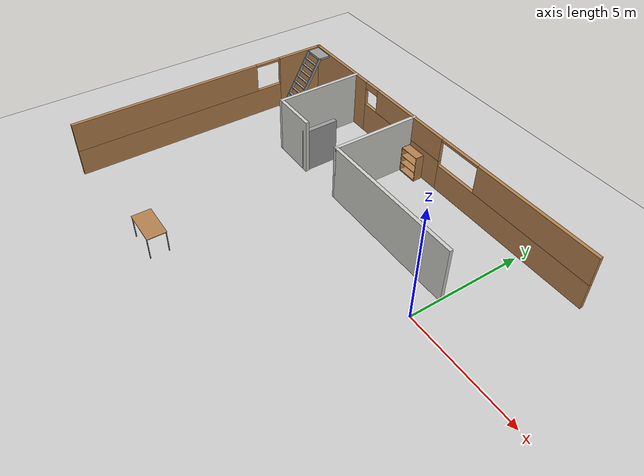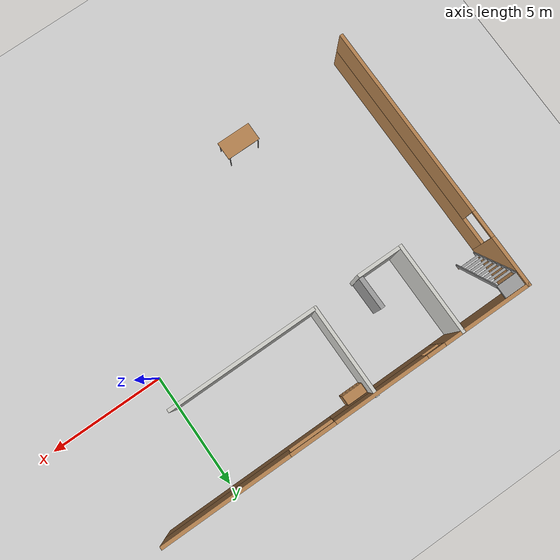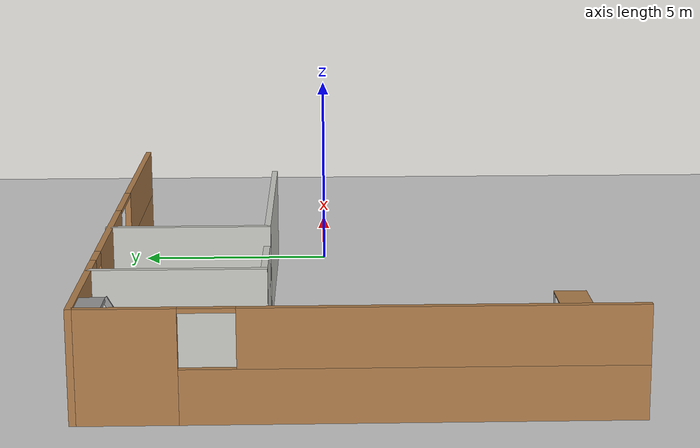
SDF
<sdf version="1.6">
 <world name="default">
  <model name="ground_plane">
   <static>1</static>
   <link name="link">
    <collision name="collision">
     <geometry><plane><normal>0 0 1</normal><size>100 100</size></plane></geometry>
     <surface>
      <contact><collide_bitmask>65535</collide_bitmask></contact>
      <friction><ode><mu>100</mu><mu2>50</mu2></ode></friction>
     </surface>
    </collision>
    <visual name="visual">
     <cast_shadows>0</cast_shadows>
     <geometry><plane><normal>0 0 1</normal><size>100 100</size></plane></geometry>
     <material>
      <script><uri>file://media/materials/scripts/gazebo.material</uri><name>Gazebo/Grey</name></script>
     </material>
    </visual>
   </link>
  </model>
  <model name="bookshelf">
   <static>1</static>
   <link name="link">
    <inertial><mass>1</mass></inertial>
    <collision name="back">
     <pose>0 0.005 0.6 0 -0 0</pose>
     <geometry><box><size>0.9 0.01 1.2</size></box></geometry>
    </collision>
    <visual name="visual1">
     <pose>0 0.005 0.6 0 -0 0</pose>
     <geometry><box><size>0.9 0.01 1.2</size></box></geometry>
     <material>
      <script><uri>file://media/materials/scripts/gazebo.material</uri><name>Gazebo/Wood</name></script>
     </material>
    </visual>
    <collision name="left_side">
     <pose>0.45 -0.195 0.6 0 -0 0</pose>
     <geometry><box><size>0.02 0.4 1.2</size></box></geometry>
    </collision>
    <visual name="visual2">
     <pose>0.45 -0.195 0.6 0 -0 0</pose>
     <geometry><box><size>0.02 0.4 1.2</size></box></geometry>
     <material>
      <script><uri>file://media/materials/scripts/gazebo.material</uri><name>Gazebo/Wood</name></script>
     </material>
    </visual>
    <collision name="right_side">
     <pose>-0.45 -0.195 0.6 0 -0 0</pose>
     <geometry><box><size>0.02 0.4 1.2</size></box></geometry>
    </collision>
    <visual name="visual3">
     <pose>-0.45 -0.195 0.6 0 -0 0</pose>
     <geometry><box><size>0.02 0.4 1.2</size></box></geometry>
     <material>
      <script><uri>file://media/materials/scripts/gazebo.material</uri><name>Gazebo/Wood</name></script>
     </material>
    </visual>
    <collision name="bottom">
     <pose>0 -0.195 0.03 0 -0 0</pose>
     <geometry><box><size>0.88 0.4 0.06</size></box></geometry>
    </collision>
    <visual name="visual4">
     <pose>0 -0.195 0.03 0 -0 0</pose>
     <geometry><box><size>0.88 0.4 0.06</size></box></geometry>
     <material>
      <script><uri>file://media/materials/scripts/gazebo.material</uri><name>Gazebo/Wood</name></script>
     </material>
    </visual>
    <collision name="top">
     <pose>0 -0.195 1.19 0 -0 0</pose>
     <geometry><box><size>0.88 0.4 0.02</size></box></geometry>
    </collision>
    <visual name="visual5">
     <pose>0 -0.195 1.19 0 -0 0</pose>
     <geometry><box><size>0.88 0.4 0.02</size></box></geometry>
     <material>
      <script><uri>file://media/materials/scripts/gazebo.material</uri><name>Gazebo/Wood</name></script>
     </material>
    </visual>
    <collision name="low_shelf">
     <pose>0 -0.195 0.43 0 -0 0</pose>
     <geometry><box><size>0.88 0.4 0.02</size></box></geometry>
    </collision>
    <visual name="visual6">
     <pose>0 -0.195 0.43 0 -0 0</pose>
     <geometry><box><size>0.88 0.4 0.02</size></box></geometry>
     <material>
      <script><uri>file://media/materials/scripts/gazebo.material</uri><name>Gazebo/Wood</name></script>
     </material>
    </visual>
    <collision name="high_shelf">
     <pose>0 -0.195 0.8 0 -0 0</pose>
     <geometry><box><size>0.88 0.4 0.02</size></box></geometry>
    </collision>
    <visual name="visual7">
     <pose>0 -0.195 0.8 0 -0 0</pose>
     <geometry><box><size>0.88 0.4 0.02</size></box></geometry>
     <material>
      <script><uri>file://media/materials/scripts/gazebo.material</uri><name>Gazebo/Wood</name></script>
     </material>
    </visual>
   </link>
   <pose>-5.94941 5.06347 0 0 -0 0</pose>
  </model>
  <model name="ladder_60deg_0rails">
   <static>1</static>
   <link name="step0">
    <pose>0 0.15396 0.266667 0 -0 0</pose>
    <inertial>
     <mass>9.75482</mass>
     <inertia>
      <ixx>0.00957124</ixx>
      <iyy>0.65963</iyy>
      <izz>0.666842</izz>
      <ixy>0</ixy>
      <ixz>0</ixz>
      <iyz>0</iyz>
     </inertia>
    </inertial>
    <collision name="collision"><geometry><box><size>0.9 0.1016 0.0381</size></box></geometry></collision>
    <visual name="visual">
     <geometry><box><size>0.9 0.1016 0.0381</size></box></geometry>
     <material>
      <script><uri>file://media/materials/scripts/gazebo.material</uri><name>Gazebo/Grey</name></script>
     </material>
    </visual>
   </link>
   <link name="step1">
    <pose>0 0.30792 0.533333 0 -0 0</pose>
    <inertial>
     <mass>9.75482</mass>
     <inertia>
      <ixx>0.00957124</ixx>
      <iyy>0.65963</iyy>
      <izz>0.666842</izz>
      <ixy>0</ixy>
      <ixz>0</ixz>
      <iyz>0</iyz>
     </inertia>
    </inertial>
    <collision name="collision"><geometry><box><size>0.9 0.1016 0.0381</size></box></geometry></collision>
    <visual name="visual">
     <geometry><box><size>0.9 0.1016 0.0381</size></box></geometry>
     <material>
      <script><uri>file://media/materials/scripts/gazebo.material</uri><name>Gazebo/Grey</name></script>
     </material>
    </visual>
   </link>
   <link name="step2">
    <pose>0 0.46188 0.8 0 -0 0</pose>
    <inertial>
     <mass>9.75482</mass>
     <inertia>
      <ixx>0.00957124</ixx>
      <iyy>0.65963</iyy>
      <izz>0.666842</izz>
      <ixy>0</ixy>
      <ixz>0</ixz>
      <iyz>0</iyz>
     </inertia>
    </inertial>
    <collision name="collision"><geometry><box><size>0.9 0.1016 0.0381</size></box></geometry></collision>
    <visual name="visual">
     <geometry><box><size>0.9 0.1016 0.0381</size></box></geometry>
     <material>
      <script><uri>file://media/materials/scripts/gazebo.material</uri><name>Gazebo/Grey</name></script>
     </material>
    </visual>
   </link>
   <link name="step3">
    <pose>0 0.61584 1.06667 0 -0 0</pose>
    <inertial>
     <mass>9.75482</mass>
     <inertia>
      <ixx>0.00957124</ixx>
      <iyy>0.65963</iyy>
      <izz>0.666842</izz>
      <ixy>0</ixy>
      <ixz>0</ixz>
      <iyz>0</iyz>
     </inertia>
    </inertial>
    <collision name="collision"><geometry><box><size>0.9 0.1016 0.0381</size></box></geometry></collision>
    <visual name="visual">
     <geometry><box><size>0.9 0.1016 0.0381</size></box></geometry>
     <material>
      <script><uri>file://media/materials/scripts/gazebo.material</uri><name>Gazebo/Grey</name></script>
     </material>
    </visual>
   </link>
   <link name="step4">
    <pose>0 0.7698 1.33333 0 -0 0</pose>
    <inertial>
     <mass>9.75482</mass>
     <inertia>
      <ixx>0.00957124</ixx>
      <iyy>0.65963</iyy>
      <izz>0.666842</izz>
      <ixy>0</ixy>
      <ixz>0</ixz>
      <iyz>0</iyz>
     </inertia>
    </inertial>
    <collision name="collision"><geometry><box><size>0.9 0.1016 0.0381</size></box></geometry></collision>
    <visual name="visual">
     <geometry><box><size>0.9 0.1016 0.0381</size></box></geometry>
     <material>
      <script><uri>file://media/materials/scripts/gazebo.material</uri><name>Gazebo/Grey</name></script>
     </material>
    </visual>
   </link>
   <link name="step5">
    <pose>0 0.92376 1.6 0 -0 0</pose>
    <inertial>
     <mass>9.75482</mass>
     <inertia>
      <ixx>0.00957124</ixx>
      <iyy>0.65963</iyy>
      <izz>0.666842</izz>
      <ixy>0</ixy>
      <ixz>0</ixz>
      <iyz>0</iyz>
     </inertia>
    </inertial>
    <collision name="collision"><geometry><box><size>0.9 0.1016 0.0381</size></box></geometry></collision>
    <visual name="visual">
     <geometry><box><size>0.9 0.1016 0.0381</size></box></geometry>
     <material>
      <script><uri>file://media/materials/scripts/gazebo.material</uri><name>Gazebo/Grey</name></script>
     </material>
    </visual>
   </link>
   <link name="step6">
    <pose>0 1.07772 1.86667 0 -0 0</pose>
    <inertial>
     <mass>9.75482</mass>
     <inertia>
      <ixx>0.00957124</ixx>
      <iyy>0.65963</iyy>
      <izz>0.666842</izz>
      <ixy>0</ixy>
      <ixz>0</ixz>
      <iyz>0</iyz>
     </inertia>
    </inertial>
    <collision name="collision"><geometry><box><size>0.9 0.1016 0.0381</size></box></geometry></collision>
    <visual name="visual">
     <geometry><box><size>0.9 0.1016 0.0381</size></box></geometry>
     <material>
      <script><uri>file://media/materials/scripts/gazebo.material</uri><name>Gazebo/Grey</name></script>
     </material>
    </visual>
   </link>
   <link name="step7">
    <pose>0 1.23168 2.13333 0 -0 0</pose>
    <inertial>
     <mass>9.75482</mass>
     <inertia>
      <ixx>0.00957124</ixx>
      <iyy>0.65963</iyy>
      <izz>0.666842</izz>
      <ixy>0</ixy>
      <ixz>0</ixz>
      <iyz>0</iyz>
     </inertia>
    </inertial>
    <collision name="collision"><geometry><box><size>0.9 0.1016 0.0381</size></box></geometry></collision>
    <visual name="visual">
     <geometry><box><size>0.9 0.1016 0.0381</size></box></geometry>
     <material>
      <script><uri>file://media/materials/scripts/gazebo.material</uri><name>Gazebo/Grey</name></script>
     </material>
    </visual>
   </link>
   <link name="landing">
    <pose>0 1.68564 2.4 0 -0 0</pose>
    <inertial>
     <mass>57.6072</mass>
     <inertia><ixx>1.73518</ixx><iyy>3.89545</iyy><izz>5.6167</izz><ixy>0</ixy><ixz>0</ixz><iyz>0</iyz></inertia>
    </inertial>
    <collision name="collision"><geometry><box><size>0.9 0.6 0.1016</size></box></geometry></collision>
    <visual name="visual">
     <geometry><box><size>0.9 0.6 0.1016</size></box></geometry>
     <material>
      <script><uri>file://media/materials/scripts/gazebo.material</uri><name>Gazebo/Grey</name></script>
     </material>
    </visual>
   </link>
   <link name="left_side_wall">
    <pose>-0.45 0.69282 1.2 1.0472 -0 0</pose>
    <collision name="collision"><geometry><box><size>0.0508 2.85128 0.13</size></box></geometry></collision>
    <visual name="visual">
     <geometry><box><size>0.0508 2.85128 0.13</size></box></geometry>
     <material>
      <script><uri>file://media/materials/scripts/gazebo.material</uri><name>Gazebo/Grey</name></script>
     </material>
    </visual>
   </link>
   <link name="right_side_wall">
    <pose>0.45 0.69282 1.2 1.0472 -0 0</pose>
    <collision name="collision"><geometry><box><size>0.0508 2.85128 0.13</size></box></geometry></collision>
    <visual name="visual">
     <geometry><box><size>0.0508 2.85128 0.13</size></box></geometry>
     <material>
      <script><uri>file://media/materials/scripts/gazebo.material</uri><name>Gazebo/Grey</name></script>
     </material>
    </visual>
   </link>
   <pose>-12.9394 3.18019 0 0 -0 0</pose>
  </model>
  <model name="wooden_peg">
   <link name="link">
    <pose>0 0 0.04 0 -0 0</pose>
    <inertial>
     <mass>0.0175</mass>
     <inertia>
      <ixx>9.74923e-06</ixx>
      <ixy>0</ixy>
      <ixz>0</ixz>
      <iyy>9.74923e-06</iyy>
      <iyz>0</iyz>
      <izz>8.31797e-07</izz>
     </inertia>
    </inertial>
    <collision name="collision">
     <geometry><cylinder><radius>0.00975</radius><length>0.08</length></cylinder></geometry>
     <surface>
      <contact>
       <poissons_ratio>0.347</poissons_ratio>
       <elastic_modulus>8.8e+09</elastic_modulus>
       <ode><kp>100000</kp><kd>100</kd><max_vel>100</max_vel><min_depth>0.001</min_depth></ode>
      </contact>
      <friction>
       <torsional>
        <coefficient>1</coefficient>
        <use_patch_radius>0</use_patch_radius>
        <surface_radius>0.01</surface_radius>
       </torsional>
      </friction>
     </surface>
    </collision>
    <visual name="visual">
     <geometry><cylinder><radius>0.00975</radius><length>0.08</length></cylinder></geometry>
     <material>
      <script><uri>file://media/materials/scripts/gazebo.material</uri><name>Gazebo/Wood</name></script>
     </material>
    </visual>
   </link>
   <pose>-12.4611 3.34456 0.008749 1.5708 0.065584 -0.003718</pose>
  </model>
  <model name="table_0">
   <static>1</static>
   <link name="link">
    <collision name="surface">
     <pose>0 0 1 0 -0 0</pose>
     <geometry><box><size>1.5 0.8 0.03</size></box></geometry>
     <surface><friction><ode><mu>0.6</mu><mu2>0.6</mu2></ode></friction></surface>
    </collision>
    <visual name="visual1">
     <pose>0 0 1 0 -0 0</pose>
     <geometry><box><size>1.5 0.8 0.03</size></box></geometry>
     <material>
      <script><uri>file://media/materials/scripts/gazebo.material</uri><name>Gazebo/Wood</name></script>
     </material>
    </visual>
    <collision name="front_left_leg">
     <pose>0.68 0.38 0.5 0 -0 0</pose>
     <geometry><cylinder><radius>0.02</radius><length>1</length></cylinder></geometry>
    </collision>
    <visual name="front_left_leg">
     <pose>0.68 0.38 0.5 0 -0 0</pose>
     <geometry><cylinder><radius>0.02</radius><length>1</length></cylinder></geometry>
     <material>
      <script><uri>file://media/materials/scripts/gazebo.material</uri><name>Gazebo/Grey</name></script>
     </material>
    </visual>
    <collision name="front_right_leg">
     <pose>0.68 -0.38 0.5 0 -0 0</pose>
     <geometry><cylinder><radius>0.02</radius><length>1</length></cylinder></geometry>
    </collision>
    <visual name="front_right_leg">
     <pose>0.68 -0.38 0.5 0 -0 0</pose>
     <geometry><cylinder><radius>0.02</radius><length>1</length></cylinder></geometry>
     <material>
      <script><uri>file://media/materials/scripts/gazebo.material</uri><name>Gazebo/Grey</name></script>
     </material>
    </visual>
    <collision name="back_right_leg">
     <pose>-0.68 -0.38 0.5 0 -0 0</pose>
     <geometry><cylinder><radius>0.02</radius><length>1</length></cylinder></geometry>
    </collision>
    <visual name="back_right_leg">
     <pose>-0.68 -0.38 0.5 0 -0 0</pose>
     <geometry><cylinder><radius>0.02</radius><length>1</length></cylinder></geometry>
     <material>
      <script><uri>file://media/materials/scripts/gazebo.material</uri><name>Gazebo/Grey</name></script>
     </material>
    </visual>
    <collision name="back_left_leg">
     <pose>-0.68 0.38 0.5 0 -0 0</pose>
     <geometry><cylinder><radius>0.02</radius><length>1</length></cylinder></geometry>
    </collision>
    <visual name="back_left_leg">
     <pose>-0.68 0.38 0.5 0 -0 0</pose>
     <geometry><cylinder><radius>0.02</radius><length>1</length></cylinder></geometry>
     <material>
      <script><uri>file://media/materials/scripts/gazebo.material</uri><name>Gazebo/Grey</name></script>
     </material>
    </visual>
   </link>
   <pose>-8.01928 -5.95607 0 0 -0 0</pose>
  </model>
  <model name="ball_bearing">
   <link name="link">
    <pose>0 0 0.003 0 -0 0</pose>
    <inertial>
     <mass>0.0011</mass>
     <inertia>
      <ixx>3.96e-09</ixx>
      <ixy>0</ixy>
      <ixz>0</ixz>
      <iyy>3.96e-09</iyy>
      <iyz>0</iyz>
      <izz>3.96e-09</izz>
     </inertia>
    </inertial>
    <collision name="collision">
     <geometry><sphere><radius>0.003</radius></sphere></geometry>
     <surface>
      <contact>
       <poissons_ratio>0.305</poissons_ratio>
       <elastic_modulus>2e+11</elastic_modulus>
       <ode><kp>100000</kp><kd>100</kd><max_vel>100</max_vel><min_depth>0.001</min_depth></ode>
      </contact>
      <friction>
       <torsional>
        <coefficient>1</coefficient>
        <use_patch_radius>0</use_patch_radius>
        <surface_radius>0.01</surface_radius>
       </torsional>
      </friction>
     </surface>
    </collision>
    <visual name="visual">
     <geometry><sphere><radius>0.003</radius></sphere></geometry>
     <material>
      <script><uri>file://media/materials/scripts/gazebo.material</uri><name>Gazebo/Grey</name></script>
     </material>
    </visual>
    <velocity_decay><linear>0</linear><angular>0.005</angular></velocity_decay>
   </link>
   <pose>-4.0826 -9.05693 -0.000558 0 -0 0</pose>
  </model>
  <model name="MyHouse">
   <link name="Door_0">
    <pose>-7.57412 0.838443 0 0 -0 1.57987</pose>
    <inertial>
     <inertia><ixx>0</ixx><ixy>0</ixy><ixz>0</ixz><iyy>0</iyy><iyz>0</iyz><izz>0</izz></inertia>
     <mass>0</mass>
    </inertial>
    <visual name="Door_0_Visual">
     <pose>0 0 1 0 -0 0</pose>
     <geometry><box><size>1.56098 0.2 2</size></box></geometry>
     <material>
      <script><uri>file://media/materials/scripts/gazebo.material</uri><name>Gazebo/Grey</name></script>
      <shader type="pixel"/>
     </material>
    </visual>
    <collision name="Door_0_Collision">
     <pose>0 0 1 0 -0 0</pose>
     <geometry><box><size>1.56098 0.2 2</size></box></geometry>
     <surface>
      <friction>
       <ode><mu>1</mu><mu2>1</mu2><fdir1>0 0 0</fdir1><slip1>0</slip1><slip2>0</slip2></ode>
       <torsional>
        <coefficient>1</coefficient>
        <patch_radius>0</patch_radius>
        <surface_radius>0</surface_radius>
        <use_patch_radius>1</use_patch_radius>
        <ode><slip>0</slip></ode>
       </torsional>
      </friction>
      <bounce><restitution_coefficient>0</restitution_coefficient><threshold>1e+06</threshold></bounce>
      <contact>
       <collide_without_contact>0</collide_without_contact>
       <collide_without_contact_bitmask>1</collide_without_contact_bitmask>
       <collide_bitmask>1</collide_bitmask>
       <ode>
        <soft_cfm>0</soft_cfm>
        <soft_erp>0.2</soft_erp>
        <kp>1e+13</kp>
        <kd>1</kd>
        <max_vel>0.01</max_vel>
        <min_depth>0</min_depth>
       </ode>
       <bullet>
        <split_impulse>1</split_impulse>
        <split_impulse_penetration_threshold>-0.01</split_impulse_penetration_threshold>
        <soft_cfm>0</soft_cfm>
        <soft_erp>0.2</soft_erp>
        <kp>1e+13</kp>
        <kd>1</kd>
       </bullet>
      </contact>
     </surface>
    </collision>
   </link>
   <link name="Wall_15">
    <pose>-5.43585 2.10365 0 0 0 -1.5708</pose>
    <visual name="Wall_15_Visual">
     <pose>0 0 1.25 0 -0 0</pose>
     <geometry><box><size>4 0.15 2.5</size></box></geometry>
     <material>
      <script><uri>file://media/materials/scripts/gazebo.material</uri><name>Gazebo/CeilingTiled</name></script>
      <ambient>1 1 1 1</ambient>
      <shader type="pixel"/>
     </material>
     <meta><layer>0</layer></meta>
    </visual>
    <collision name="Wall_15_Collision">
     <pose>0 0 1.25 0 -0 0</pose>
     <geometry><box><size>4 0.15 2.5</size></box></geometry>
     <surface>
      <friction>
       <ode><mu>1</mu><mu2>1</mu2><fdir1>0 0 0</fdir1><slip1>0</slip1><slip2>0</slip2></ode>
       <torsional>
        <coefficient>1</coefficient>
        <patch_radius>0</patch_radius>
        <surface_radius>0</surface_radius>
        <use_patch_radius>1</use_patch_radius>
        <ode><slip>0</slip></ode>
       </torsional>
      </friction>
      <bounce><restitution_coefficient>0</restitution_coefficient><threshold>1e+06</threshold></bounce>
      <contact>
       <collide_without_contact>0</collide_without_contact>
       <collide_without_contact_bitmask>1</collide_without_contact_bitmask>
       <collide_bitmask>1</collide_bitmask>
       <ode>
        <soft_cfm>0</soft_cfm>
        <soft_erp>0.2</soft_erp>
        <kp>1e+13</kp>
        <kd>1</kd>
        <max_vel>0.01</max_vel>
        <min_depth>0</min_depth>
       </ode>
       <bullet>
        <split_impulse>1</split_impulse>
        <split_impulse_penetration_threshold>-0.01</split_impulse_penetration_threshold>
        <soft_cfm>0</soft_cfm>
        <soft_erp>0.2</soft_erp>
        <kp>1e+13</kp>
        <kd>1</kd>
       </bullet>
      </contact>
     </surface>
    </collision>
   </link>
   <link name="Wall_19">
    <pose>-4.26793 4 0 0 -0 0</pose>
    <visual name="Wall_19_Visual_4">
     <pose>-1.43787 0 1.95 0 -0 0</pose>
     <geometry><box><size>4.13284 0.15 1.1</size></box></geometry>
     <material>
      <script><uri>file://media/materials/scripts/gazebo.material</uri><name>Gazebo/Wood</name></script>
      <ambient>0.760784 0.662745 0.627451 1</ambient>
      <shader type="pixel"/>
     </material>
     <meta><layer>0</layer></meta>
    </visual>
    <visual name="Wall_19_Visual_1">
     <pose>-1.83787 0 0.7 0 -0 0</pose>
     <geometry><box><size>4.93284 0.15 1.4</size></box></geometry>
     <material>
      <script><uri>file://media/materials/scripts/gazebo.material</uri><name>Gazebo/Wood</name></script>
      <ambient>0.760784 0.662745 0.627451 1</ambient>
      <shader type="pixel"/>
     </material>
     <meta><layer>0</layer></meta>
    </visual>
    <visual name="Wall_19_Visual_0">
     <pose>-6.26818 0 1.25 0 -0 0</pose>
     <geometry><box><size>3.92778 0.15 2.5</size></box></geometry>
     <material>
      <script><uri>file://media/materials/scripts/gazebo.material</uri><name>Gazebo/Wood</name></script>
      <ambient>0.760784 0.662745 0.627451 1</ambient>
      <shader type="pixel"/>
     </material>
     <meta><layer>0</layer></meta>
    </visual>
    <visual name="Wall_19_Visual_5">
     <pose>-3.90429 0 2.35 0 -0 0</pose>
     <geometry><box><size>0.8 0.15 0.3</size></box></geometry>
     <material>
      <script><uri>file://media/materials/scripts/gazebo.material</uri><name>Gazebo/Wood</name></script>
      <ambient>0.760784 0.662745 0.627451 1</ambient>
      <shader type="pixel"/>
     </material>
     <meta><layer>0</layer></meta>
    </visual>
    <visual name="Wall_19_Visual_2">
     <pose>4.43031 0 0.6 0 -0 0</pose>
     <geometry><box><size>7.60351 0.15 1.2</size></box></geometry>
     <material>
      <script><uri>file://media/materials/scripts/gazebo.material</uri><name>Gazebo/Wood</name></script>
      <ambient>0.760784 0.662745 0.627451 1</ambient>
      <shader type="pixel"/>
     </material>
     <meta><layer>0</layer></meta>
    </visual>
    <visual name="Wall_19_Visual_6">
     <pose>1.62855 0 2.45 0 -0 0</pose>
     <geometry><box><size>2 0.15 0.1</size></box></geometry>
     <material>
      <script><uri>file://media/materials/scripts/gazebo.material</uri><name>Gazebo/Wood</name></script>
      <ambient>0.760784 0.662745 0.627451 1</ambient>
      <shader type="pixel"/>
     </material>
     <meta><layer>0</layer></meta>
    </visual>
    <visual name="Wall_19_Visual_3">
     <pose>5.43031 0 1.85 0 -0 0</pose>
     <geometry><box><size>5.60351 0.15 1.3</size></box></geometry>
     <material>
      <script><uri>file://media/materials/scripts/gazebo.material</uri><name>Gazebo/Wood</name></script>
      <ambient>0.760784 0.662745 0.627451 1</ambient>
      <shader type="pixel"/>
     </material>
     <meta><layer>0</layer></meta>
    </visual>
    <collision name="Wall_19_Collision_2">
     <pose>4.43031 0 0.6 0 -0 0</pose>
     <geometry><box><size>7.60351 0.15 1.2</size></box></geometry>
     <surface>
      <friction>
       <ode><mu>1</mu><mu2>1</mu2><fdir1>0 0 0</fdir1><slip1>0</slip1><slip2>0</slip2></ode>
       <torsional>
        <coefficient>1</coefficient>
        <patch_radius>0</patch_radius>
        <surface_radius>0</surface_radius>
        <use_patch_radius>1</use_patch_radius>
        <ode><slip>0</slip></ode>
       </torsional>
      </friction>
      <bounce><restitution_coefficient>0</restitution_coefficient><threshold>1e+06</threshold></bounce>
      <contact>
       <collide_without_contact>0</collide_without_contact>
       <collide_without_contact_bitmask>1</collide_without_contact_bitmask>
       <collide_bitmask>1</collide_bitmask>
       <ode>
        <soft_cfm>0</soft_cfm>
        <soft_erp>0.2</soft_erp>
        <kp>1e+13</kp>
        <kd>1</kd>
        <max_vel>0.01</max_vel>
        <min_depth>0</min_depth>
       </ode>
       <bullet>
        <split_impulse>1</split_impulse>
        <split_impulse_penetration_threshold>-0.01</split_impulse_penetration_threshold>
        <soft_cfm>0</soft_cfm>
        <soft_erp>0.2</soft_erp>
        <kp>1e+13</kp>
        <kd>1</kd>
       </bullet>
      </contact>
     </surface>
    </collision>
    <collision name="Wall_19_Collision_1">
     <pose>-1.83787 0 0.7 0 -0 0</pose>
     <geometry><box><size>4.93284 0.15 1.4</size></box></geometry>
     <surface>
      <friction>
       <ode><mu>1</mu><mu2>1</mu2><fdir1>0 0 0</fdir1><slip1>0</slip1><slip2>0</slip2></ode>
       <torsional>
        <coefficient>1</coefficient>
        <patch_radius>0</patch_radius>
        <surface_radius>0</surface_radius>
        <use_patch_radius>1</use_patch_radius>
        <ode><slip>0</slip></ode>
       </torsional>
      </friction>
      <bounce><restitution_coefficient>0</restitution_coefficient><threshold>1e+06</threshold></bounce>
      <contact>
       <collide_without_contact>0</collide_without_contact>
       <collide_without_contact_bitmask>1</collide_without_contact_bitmask>
       <collide_bitmask>1</collide_bitmask>
       <ode>
        <soft_cfm>0</soft_cfm>
        <soft_erp>0.2</soft_erp>
        <kp>1e+13</kp>
        <kd>1</kd>
        <max_vel>0.01</max_vel>
        <min_depth>0</min_depth>
       </ode>
       <bullet>
        <split_impulse>1</split_impulse>
        <split_impulse_penetration_threshold>-0.01</split_impulse_penetration_threshold>
        <soft_cfm>0</soft_cfm>
        <soft_erp>0.2</soft_erp>
        <kp>1e+13</kp>
        <kd>1</kd>
       </bullet>
      </contact>
     </surface>
    </collision>
    <collision name="Wall_19_Collision_0">
     <pose>-6.26818 0 1.25 0 -0 0</pose>
     <geometry><box><size>3.92778 0.15 2.5</size></box></geometry>
     <surface>
      <friction>
       <ode><mu>1</mu><mu2>1</mu2><fdir1>0 0 0</fdir1><slip1>0</slip1><slip2>0</slip2></ode>
       <torsional>
        <coefficient>1</coefficient>
        <patch_radius>0</patch_radius>
        <surface_radius>0</surface_radius>
        <use_patch_radius>1</use_patch_radius>
        <ode><slip>0</slip></ode>
       </torsional>
      </friction>
      <bounce><restitution_coefficient>0</restitution_coefficient><threshold>1e+06</threshold></bounce>
      <contact>
       <collide_without_contact>0</collide_without_contact>
       <collide_without_contact_bitmask>1</collide_without_contact_bitmask>
       <collide_bitmask>1</collide_bitmask>
       <ode>
        <soft_cfm>0</soft_cfm>
        <soft_erp>0.2</soft_erp>
        <kp>1e+13</kp>
        <kd>1</kd>
        <max_vel>0.01</max_vel>
        <min_depth>0</min_depth>
       </ode>
       <bullet>
        <split_impulse>1</split_impulse>
        <split_impulse_penetration_threshold>-0.01</split_impulse_penetration_threshold>
        <soft_cfm>0</soft_cfm>
        <soft_erp>0.2</soft_erp>
        <kp>1e+13</kp>
        <kd>1</kd>
       </bullet>
      </contact>
     </surface>
    </collision>
    <collision name="Wall_19_Collision_6">
     <pose>1.62855 0 2.45 0 -0 0</pose>
     <geometry><box><size>2 0.15 0.1</size></box></geometry>
     <surface>
      <friction>
       <ode><mu>1</mu><mu2>1</mu2><fdir1>0 0 0</fdir1><slip1>0</slip1><slip2>0</slip2></ode>
       <torsional>
        <coefficient>1</coefficient>
        <patch_radius>0</patch_radius>
        <surface_radius>0</surface_radius>
        <use_patch_radius>1</use_patch_radius>
        <ode><slip>0</slip></ode>
       </torsional>
      </friction>
      <bounce><restitution_coefficient>0</restitution_coefficient><threshold>1e+06</threshold></bounce>
      <contact>
       <collide_without_contact>0</collide_without_contact>
       <collide_without_contact_bitmask>1</collide_without_contact_bitmask>
       <collide_bitmask>1</collide_bitmask>
       <ode>
        <soft_cfm>0</soft_cfm>
        <soft_erp>0.2</soft_erp>
        <kp>1e+13</kp>
        <kd>1</kd>
        <max_vel>0.01</max_vel>
        <min_depth>0</min_depth>
       </ode>
       <bullet>
        <split_impulse>1</split_impulse>
        <split_impulse_penetration_threshold>-0.01</split_impulse_penetration_threshold>
        <soft_cfm>0</soft_cfm>
        <soft_erp>0.2</soft_erp>
        <kp>1e+13</kp>
        <kd>1</kd>
       </bullet>
      </contact>
     </surface>
    </collision>
    <collision name="Wall_19_Collision_3">
     <pose>5.43031 0 1.85 0 -0 0</pose>
     <geometry><box><size>5.60351 0.15 1.3</size></box></geometry>
     <surface>
      <friction>
       <ode><mu>1</mu><mu2>1</mu2><fdir1>0 0 0</fdir1><slip1>0</slip1><slip2>0</slip2></ode>
       <torsional>
        <coefficient>1</coefficient>
        <patch_radius>0</patch_radius>
        <surface_radius>0</surface_radius>
        <use_patch_radius>1</use_patch_radius>
        <ode><slip>0</slip></ode>
       </torsional>
      </friction>
      <bounce><restitution_coefficient>0</restitution_coefficient><threshold>1e+06</threshold></bounce>
      <contact>
       <collide_without_contact>0</collide_without_contact>
       <collide_without_contact_bitmask>1</collide_without_contact_bitmask>
       <collide_bitmask>1</collide_bitmask>
       <ode>
        <soft_cfm>0</soft_cfm>
        <soft_erp>0.2</soft_erp>
        <kp>1e+13</kp>
        <kd>1</kd>
        <max_vel>0.01</max_vel>
        <min_depth>0</min_depth>
       </ode>
       <bullet>
        <split_impulse>1</split_impulse>
        <split_impulse_penetration_threshold>-0.01</split_impulse_penetration_threshold>
        <soft_cfm>0</soft_cfm>
        <soft_erp>0.2</soft_erp>
        <kp>1e+13</kp>
        <kd>1</kd>
       </bullet>
      </contact>
     </surface>
    </collision>
    <collision name="Wall_19_Collision_5">
     <pose>-3.90429 0 2.35 0 -0 0</pose>
     <geometry><box><size>0.8 0.15 0.3</size></box></geometry>
     <surface>
      <friction>
       <ode><mu>1</mu><mu2>1</mu2><fdir1>0 0 0</fdir1><slip1>0</slip1><slip2>0</slip2></ode>
       <torsional>
        <coefficient>1</coefficient>
        <patch_radius>0</patch_radius>
        <surface_radius>0</surface_radius>
        <use_patch_radius>1</use_patch_radius>
        <ode><slip>0</slip></ode>
       </torsional>
      </friction>
      <bounce><restitution_coefficient>0</restitution_coefficient><threshold>1e+06</threshold></bounce>
      <contact>
       <collide_without_contact>0</collide_without_contact>
       <collide_without_contact_bitmask>1</collide_without_contact_bitmask>
       <collide_bitmask>1</collide_bitmask>
       <ode>
        <soft_cfm>0</soft_cfm>
        <soft_erp>0.2</soft_erp>
        <kp>1e+13</kp>
        <kd>1</kd>
        <max_vel>0.01</max_vel>
        <min_depth>0</min_depth>
       </ode>
       <bullet>
        <split_impulse>1</split_impulse>
        <split_impulse_penetration_threshold>-0.01</split_impulse_penetration_threshold>
        <soft_cfm>0</soft_cfm>
        <soft_erp>0.2</soft_erp>
        <kp>1e+13</kp>
        <kd>1</kd>
       </bullet>
      </contact>
     </surface>
    </collision>
    <collision name="Wall_19_Collision_4">
     <pose>-1.43787 0 1.95 0 -0 0</pose>
     <geometry><box><size>4.13284 0.15 1.1</size></box></geometry>
     <surface>
      <friction>
       <ode><mu>1</mu><mu2>1</mu2><fdir1>0 0 0</fdir1><slip1>0</slip1><slip2>0</slip2></ode>
       <torsional>
        <coefficient>1</coefficient>
        <patch_radius>0</patch_radius>
        <surface_radius>0</surface_radius>
        <use_patch_radius>1</use_patch_radius>
        <ode><slip>0</slip></ode>
       </torsional>
      </friction>
      <bounce><restitution_coefficient>0</restitution_coefficient><threshold>1e+06</threshold></bounce>
      <contact>
       <collide_without_contact>0</collide_without_contact>
       <collide_without_contact_bitmask>1</collide_without_contact_bitmask>
       <collide_bitmask>1</collide_bitmask>
       <ode>
        <soft_cfm>0</soft_cfm>
        <soft_erp>0.2</soft_erp>
        <kp>1e+13</kp>
        <kd>1</kd>
        <max_vel>0.01</max_vel>
        <min_depth>0</min_depth>
       </ode>
       <bullet>
        <split_impulse>1</split_impulse>
        <split_impulse_penetration_threshold>-0.01</split_impulse_penetration_threshold>
        <soft_cfm>0</soft_cfm>
        <soft_erp>0.2</soft_erp>
        <kp>1e+13</kp>
        <kd>1</kd>
       </bullet>
      </contact>
     </surface>
    </collision>
   </link>
   <link name="Wall_2">
    <pose>-12.425 -1.925 0 0 0 -1.5708</pose>
    <visual name="Wall_2_Visual_3">
     <pose>-3.13416 0 2.45 0 -0 0</pose>
     <geometry><box><size>1.2 0.15 0.1</size></box></geometry>
     <material>
      <script><uri>file://media/materials/scripts/gazebo.material</uri><name>Gazebo/Wood</name></script>
      <ambient>1 1 1 1</ambient>
      <shader type="pixel"/>
     </material>
     <meta><layer>0</layer></meta>
    </visual>
    <visual name="Wall_2_Visual_0">
     <pose>-4.86708 0 1.25 0 -0 0</pose>
     <geometry><box><size>2.26584 0.15 2.5</size></box></geometry>
     <material>
      <script><uri>file://media/materials/scripts/gazebo.material</uri><name>Gazebo/Wood</name></script>
      <ambient>1 1 1 1</ambient>
      <shader type="pixel"/>
     </material>
     <meta><layer>0</layer></meta>
    </visual>
    <visual name="Wall_2_Visual_1">
     <pose>1.13292 0 0.6 0 -0 0</pose>
     <geometry><box><size>9.73416 0.15 1.2</size></box></geometry>
     <material>
      <script><uri>file://media/materials/scripts/gazebo.material</uri><name>Gazebo/Wood</name></script>
      <ambient>1 1 1 1</ambient>
      <shader type="pixel"/>
     </material>
     <meta><layer>0</layer></meta>
    </visual>
    <visual name="Wall_2_Visual_2">
     <pose>1.73292 0 1.85 0 -0 0</pose>
     <geometry><box><size>8.53416 0.15 1.3</size></box></geometry>
     <material>
      <script><uri>file://media/materials/scripts/gazebo.material</uri><name>Gazebo/Wood</name></script>
      <ambient>1 1 1 1</ambient>
      <shader type="pixel"/>
     </material>
     <meta><layer>0</layer></meta>
    </visual>
    <collision name="Wall_2_Collision_0">
     <pose>-4.86708 0 1.25 0 -0 0</pose>
     <geometry><box><size>2.26584 0.15 2.5</size></box></geometry>
     <surface>
      <friction>
       <ode><mu>1</mu><mu2>1</mu2><fdir1>0 0 0</fdir1><slip1>0</slip1><slip2>0</slip2></ode>
       <torsional>
        <coefficient>1</coefficient>
        <patch_radius>0</patch_radius>
        <surface_radius>0</surface_radius>
        <use_patch_radius>1</use_patch_radius>
        <ode><slip>0</slip></ode>
       </torsional>
      </friction>
      <bounce><restitution_coefficient>0</restitution_coefficient><threshold>1e+06</threshold></bounce>
      <contact>
       <collide_without_contact>0</collide_without_contact>
       <collide_without_contact_bitmask>1</collide_without_contact_bitmask>
       <collide_bitmask>1</collide_bitmask>
       <ode>
        <soft_cfm>0</soft_cfm>
        <soft_erp>0.2</soft_erp>
        <kp>1e+13</kp>
        <kd>1</kd>
        <max_vel>0.01</max_vel>
        <min_depth>0</min_depth>
       </ode>
       <bullet>
        <split_impulse>1</split_impulse>
        <split_impulse_penetration_threshold>-0.01</split_impulse_penetration_threshold>
        <soft_cfm>0</soft_cfm>
        <soft_erp>0.2</soft_erp>
        <kp>1e+13</kp>
        <kd>1</kd>
       </bullet>
      </contact>
     </surface>
    </collision>
    <collision name="Wall_2_Collision_3">
     <pose>-3.13416 0 2.45 0 -0 0</pose>
     <geometry><box><size>1.2 0.15 0.1</size></box></geometry>
     <surface>
      <friction>
       <ode><mu>1</mu><mu2>1</mu2><fdir1>0 0 0</fdir1><slip1>0</slip1><slip2>0</slip2></ode>
       <torsional>
        <coefficient>1</coefficient>
        <patch_radius>0</patch_radius>
        <surface_radius>0</surface_radius>
        <use_patch_radius>1</use_patch_radius>
        <ode><slip>0</slip></ode>
       </torsional>
      </friction>
      <bounce><restitution_coefficient>0</restitution_coefficient><threshold>1e+06</threshold></bounce>
      <contact>
       <collide_without_contact>0</collide_without_contact>
       <collide_without_contact_bitmask>1</collide_without_contact_bitmask>
       <collide_bitmask>1</collide_bitmask>
       <ode>
        <soft_cfm>0</soft_cfm>
        <soft_erp>0.2</soft_erp>
        <kp>1e+13</kp>
        <kd>1</kd>
        <max_vel>0.01</max_vel>
        <min_depth>0</min_depth>
       </ode>
       <bullet>
        <split_impulse>1</split_impulse>
        <split_impulse_penetration_threshold>-0.01</split_impulse_penetration_threshold>
        <soft_cfm>0</soft_cfm>
        <soft_erp>0.2</soft_erp>
        <kp>1e+13</kp>
        <kd>1</kd>
       </bullet>
      </contact>
     </surface>
    </collision>
    <collision name="Wall_2_Collision_2">
     <pose>1.73292 0 1.85 0 -0 0</pose>
     <geometry><box><size>8.53416 0.15 1.3</size></box></geometry>
     <surface>
      <friction>
       <ode><mu>1</mu><mu2>1</mu2><fdir1>0 0 0</fdir1><slip1>0</slip1><slip2>0</slip2></ode>
       <torsional>
        <coefficient>1</coefficient>
        <patch_radius>0</patch_radius>
        <surface_radius>0</surface_radius>
        <use_patch_radius>1</use_patch_radius>
        <ode><slip>0</slip></ode>
       </torsional>
      </friction>
      <bounce><restitution_coefficient>0</restitution_coefficient><threshold>1e+06</threshold></bounce>
      <contact>
       <collide_without_contact>0</collide_without_contact>
       <collide_without_contact_bitmask>1</collide_without_contact_bitmask>
       <collide_bitmask>1</collide_bitmask>
       <ode>
        <soft_cfm>0</soft_cfm>
        <soft_erp>0.2</soft_erp>
        <kp>1e+13</kp>
        <kd>1</kd>
        <max_vel>0.01</max_vel>
        <min_depth>0</min_depth>
       </ode>
       <bullet>
        <split_impulse>1</split_impulse>
        <split_impulse_penetration_threshold>-0.01</split_impulse_penetration_threshold>
        <soft_cfm>0</soft_cfm>
        <soft_erp>0.2</soft_erp>
        <kp>1e+13</kp>
        <kd>1</kd>
       </bullet>
      </contact>
     </surface>
    </collision>
    <collision name="Wall_2_Collision_1">
     <pose>1.13292 0 0.6 0 -0 0</pose>
     <geometry><box><size>9.73416 0.15 1.2</size></box></geometry>
     <surface>
      <friction>
       <ode><mu>1</mu><mu2>1</mu2><fdir1>0 0 0</fdir1><slip1>0</slip1><slip2>0</slip2></ode>
       <torsional>
        <coefficient>1</coefficient>
        <patch_radius>0</patch_radius>
        <surface_radius>0</surface_radius>
        <use_patch_radius>1</use_patch_radius>
        <ode><slip>0</slip></ode>
       </torsional>
      </friction>
      <bounce><restitution_coefficient>0</restitution_coefficient><threshold>1e+06</threshold></bounce>
      <contact>
       <collide_without_contact>0</collide_without_contact>
       <collide_without_contact_bitmask>1</collide_without_contact_bitmask>
       <collide_bitmask>1</collide_bitmask>
       <ode>
        <soft_cfm>0</soft_cfm>
        <soft_erp>0.2</soft_erp>
        <kp>1e+13</kp>
        <kd>1</kd>
        <max_vel>0.01</max_vel>
        <min_depth>0</min_depth>
       </ode>
       <bullet>
        <split_impulse>1</split_impulse>
        <split_impulse_penetration_threshold>-0.01</split_impulse_penetration_threshold>
        <soft_cfm>0</soft_cfm>
        <soft_erp>0.2</soft_erp>
        <kp>1e+13</kp>
        <kd>1</kd>
       </bullet>
      </contact>
     </surface>
    </collision>
   </link>
   <link name="Wall_31">
    <pose>-2.15389 0.17865 0 0 -0 0</pose>
    <inertial>
     <inertia><ixx>0</ixx><ixy>0</ixy><ixz>0</ixz><iyy>0</iyy><iyz>0</iyz><izz>0</izz></inertia>
     <mass>0</mass>
    </inertial>
    <visual name="Wall_31_Visual">
     <pose>0 0 1.25 0 -0 0</pose>
     <geometry><box><size>6.51553 0.15 2.5</size></box></geometry>
     <material>
      <script><uri>file://media/materials/scripts/gazebo.material</uri><name>Gazebo/CeilingTiled</name></script>
      <ambient>0.760784 0.662745 0.627451 1</ambient>
      <shader type="pixel"/>
     </material>
     <meta><layer>0</layer></meta>
    </visual>
    <collision name="Wall_31_Collision">
     <pose>0 0 1.25 0 -0 0</pose>
     <geometry><box><size>6.51553 0.15 2.5</size></box></geometry>
     <surface>
      <friction>
       <ode><mu>1</mu><mu2>1</mu2><fdir1>0 0 0</fdir1><slip1>0</slip1><slip2>0</slip2></ode>
       <torsional>
        <coefficient>1</coefficient>
        <patch_radius>0</patch_radius>
        <surface_radius>0</surface_radius>
        <use_patch_radius>1</use_patch_radius>
        <ode><slip>0</slip></ode>
       </torsional>
      </friction>
      <bounce><restitution_coefficient>0</restitution_coefficient><threshold>1e+06</threshold></bounce>
      <contact>
       <collide_without_contact>0</collide_without_contact>
       <collide_without_contact_bitmask>1</collide_without_contact_bitmask>
       <collide_bitmask>1</collide_bitmask>
       <ode>
        <soft_cfm>0</soft_cfm>
        <soft_erp>0.2</soft_erp>
        <kp>1e+13</kp>
        <kd>1</kd>
        <max_vel>0.01</max_vel>
        <min_depth>0</min_depth>
       </ode>
       <bullet>
        <split_impulse>1</split_impulse>
        <split_impulse_penetration_threshold>-0.01</split_impulse_penetration_threshold>
        <soft_cfm>0</soft_cfm>
        <soft_erp>0.2</soft_erp>
        <kp>1e+13</kp>
        <kd>1</kd>
       </bullet>
      </contact>
     </surface>
    </collision>
   </link>
   <link name="Wall_8">
    <pose>-9.39118 2.05739 0 0 0 -1.5708</pose>
    <visual name="Wall_8_Visual">
     <pose>0 0 1.25 0 -0 0</pose>
     <geometry><box><size>4 0.15 2.5</size></box></geometry>
     <material>
      <script><uri>file://media/materials/scripts/gazebo.material</uri><name>Gazebo/CeilingTiled</name></script>
      <ambient>0.760784 0.662745 0.627451 1</ambient>
      <shader type="pixel"/>
     </material>
     <meta><layer>0</layer></meta>
    </visual>
    <collision name="Wall_8_Collision">
     <pose>0 0 1.25 0 -0 0</pose>
     <geometry><box><size>4 0.15 2.5</size></box></geometry>
     <surface>
      <friction>
       <ode><mu>1</mu><mu2>1</mu2><fdir1>0 0 0</fdir1><slip1>0</slip1><slip2>0</slip2></ode>
       <torsional>
        <coefficient>1</coefficient>
        <patch_radius>0</patch_radius>
        <surface_radius>0</surface_radius>
        <use_patch_radius>1</use_patch_radius>
        <ode><slip>0</slip></ode>
       </torsional>
      </friction>
      <bounce><restitution_coefficient>0</restitution_coefficient><threshold>1e+06</threshold></bounce>
      <contact>
       <collide_without_contact>0</collide_without_contact>
       <collide_without_contact_bitmask>1</collide_without_contact_bitmask>
       <collide_bitmask>1</collide_bitmask>
       <ode>
        <soft_cfm>0</soft_cfm>
        <soft_erp>0.2</soft_erp>
        <kp>1e+13</kp>
        <kd>1</kd>
        <max_vel>0.01</max_vel>
        <min_depth>0</min_depth>
       </ode>
       <bullet>
        <split_impulse>1</split_impulse>
        <split_impulse_penetration_threshold>-0.01</split_impulse_penetration_threshold>
        <soft_cfm>0</soft_cfm>
        <soft_erp>0.2</soft_erp>
        <kp>1e+13</kp>
        <kd>1</kd>
       </bullet>
      </contact>
     </surface>
    </collision>
   </link>
   <link name="Wall_9">
    <pose>-8.37208 0.132389 0 0 -0 0</pose>
    <inertial>
     <inertia><ixx>0</ixx><ixy>0</ixy><ixz>0</ixz><iyy>0</iyy><iyz>0</iyz><izz>0</izz></inertia>
     <mass>0</mass>
    </inertial>
    <visual name="Wall_9_Visual">
     <pose>0 0 1.25 0 -0 0</pose>
     <geometry><box><size>1.90124 0.15 2.5</size></box></geometry>
     <material>
      <script><uri>file://media/materials/scripts/gazebo.material</uri><name>Gazebo/CeilingTiled</name></script>
      <ambient>0.760784 0.662745 0.627451 1</ambient>
      <shader type="pixel"/>
     </material>
     <meta><layer>0</layer></meta>
    </visual>
    <collision name="Wall_9_Collision">
     <pose>0 0 1.25 0 -0 0</pose>
     <geometry><box><size>1.90124 0.15 2.5</size></box></geometry>
     <surface>
      <friction>
       <ode><mu>1</mu><mu2>1</mu2><fdir1>0 0 0</fdir1><slip1>0</slip1><slip2>0</slip2></ode>
       <torsional>
        <coefficient>1</coefficient>
        <patch_radius>0</patch_radius>
        <surface_radius>0</surface_radius>
        <use_patch_radius>1</use_patch_radius>
        <ode><slip>0</slip></ode>
       </torsional>
      </friction>
      <bounce><restitution_coefficient>0</restitution_coefficient><threshold>1e+06</threshold></bounce>
      <contact>
       <collide_without_contact>0</collide_without_contact>
       <collide_without_contact_bitmask>1</collide_without_contact_bitmask>
       <collide_bitmask>1</collide_bitmask>
       <ode>
        <soft_cfm>0</soft_cfm>
        <soft_erp>0.2</soft_erp>
        <kp>1e+13</kp>
        <kd>1</kd>
        <max_vel>0.01</max_vel>
        <min_depth>0</min_depth>
       </ode>
       <bullet>
        <split_impulse>1</split_impulse>
        <split_impulse_penetration_threshold>-0.01</split_impulse_penetration_threshold>
        <soft_cfm>0</soft_cfm>
        <soft_erp>0.2</soft_erp>
        <kp>1e+13</kp>
        <kd>1</kd>
       </bullet>
      </contact>
     </surface>
    </collision>
   </link>
   <static>1</static>
   <pose>-1.06 1.19 0 0 -0 0</pose>
  </model>
 </world>
</sdf>
